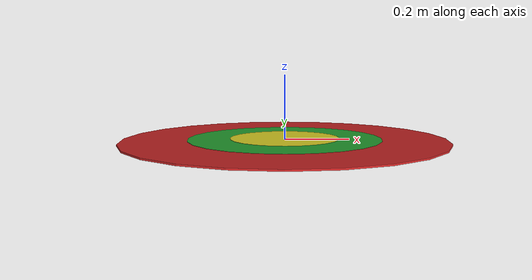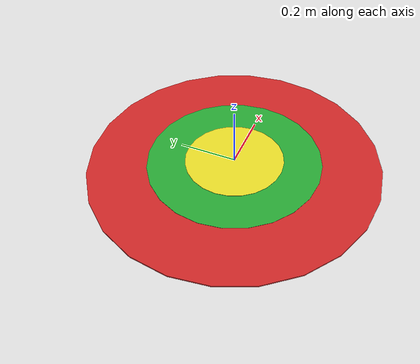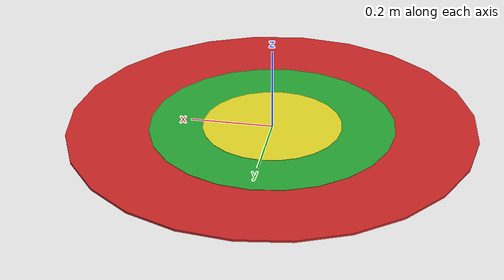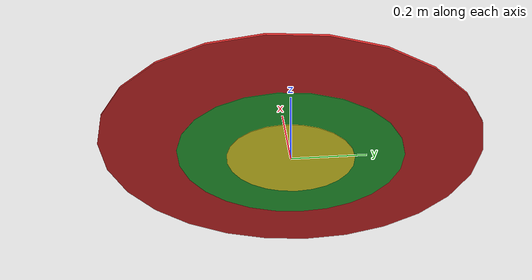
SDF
<?xml version="1.0" ?>
<sdf version="1.5">
  <model name="target">
    <static>true</static>
    <link name="yellow">
      <pose>0 0 0 0 0 0</pose>
      <visual name="visual">
        <geometry>
          <cylinder>
              <radius>0.17</radius>
              <length>.009</length>
          </cylinder>
        </geometry>
        <material>
          <script>
            <uri>file://media/materials/scripts/gazebo.material</uri>
            <name>Gazebo/Yellow</name>
          </script>
          <ambient>1 1 1 1</ambient>
        </material>
        <cast_shadows>0</cast_shadows>
        <transparency>0</transparency>
      </visual>
    </link>
    <link name="green">
      <pose>0 0 0 0 0 0</pose>
      <visual name="visual">
        <geometry>
          <cylinder>
              <radius>0.3</radius>
              <length>.007</length>
          </cylinder>
        </geometry>
        <material>
          <script>
            <uri>file://media/materials/scripts/gazebo.material</uri>
            <name>Gazebo/Green</name>
          </script>
          <ambient>1 1 1 1</ambient>
        </material>
        <cast_shadows>0</cast_shadows>
        <transparency>0</transparency>
      </visual>
    </link>
    <link name="red">
      <pose>0 0 0 0 0 0</pose>
      <visual name="visual">
        <geometry>
          <cylinder>
              <radius>0.5</radius>
              <length>.005</length>
          </cylinder>
        </geometry>
        <material>
          <script>
            <uri>file://media/materials/scripts/gazebo.material</uri>
            <name>Gazebo/Red</name>
          </script>
          <ambient>1 1 1 1</ambient>
        </material>
        <cast_shadows>0</cast_shadows>
        <transparency>0</transparency>
      </visual>
    </link>
  </model>
</sdf>
